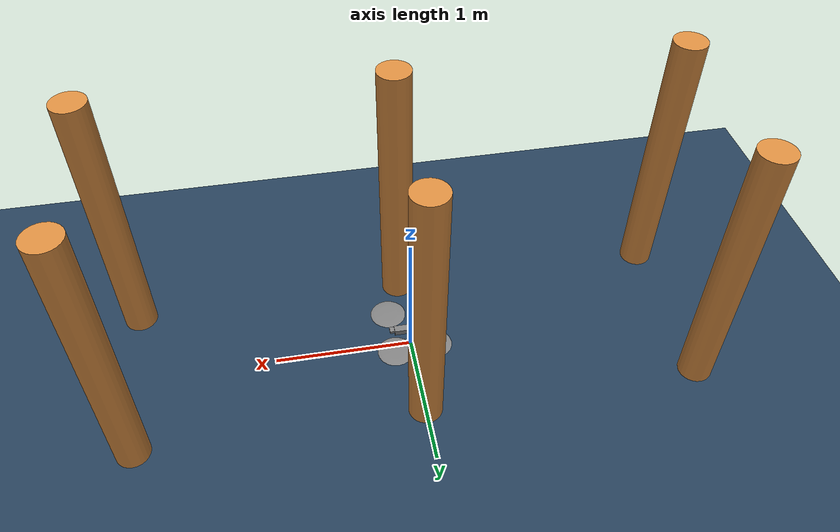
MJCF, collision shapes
<mujoco model="UAV Pillars Scene">
  <include file="../quadrotor_modified.xml"/>
  <compiler meshdir="../assets" texturedir="../assets"/>

  <visual>
    <headlight diffuse="0.6 0.6 0.6" ambient="0.3 0.3 0.3" specular="0 0 0"/>
    <rgba haze="0.15 0.25 0.35 1"/>
    <global azimuth="120" elevation="-20"/>
  </visual>

  <asset>
    <texture type="skybox" builtin="gradient" rgb1="0.3 0.5 0.7" rgb2="0 0 0" width="32" height="32"/>
    <texture type="2d" name="groundplane" builtin="checker" mark="edge"
             rgb1="0.2 0.3 0.4" rgb2="0.1 0.2 0.3" markrgb="0.8 0.8 0.8"
             width="300" height="300"/>
    <material name="groundplane" texture="groundplane" texuniform="true" texrepeat="5 5"/>
    <material name="pillar" rgba="0.85 0.55 0.25 1"/>
  </asset>

  <worldbody>
    <light name="overhead" pos="0 0 5" dir="0 0 -1" diffuse="0.8 0.8 0.8"/>
    <geom name="floor" type="plane" size="10 10 0.05" material="groundplane"/>

    <!-- 6 vertical cylinder pillars in two staggered columns.
         Column A at y = -0.6, Column B at y = +0.6, x ∈ {-2, 0, +2}.
         Drone weaves between them. Radius 0.12 m, height 2 m. -->
    <geom name="pillar_A1" type="cylinder" pos="-2.0 -0.6 1.0" size="0.12 1.0" material="pillar"/>
    <geom name="pillar_A2" type="cylinder" pos=" 0.0 -0.6 1.0" size="0.12 1.0" material="pillar"/>
    <geom name="pillar_A3" type="cylinder" pos=" 2.0 -0.6 1.0" size="0.12 1.0" material="pillar"/>
    <geom name="pillar_B1" type="cylinder" pos="-2.0  0.6 1.0" size="0.12 1.0" material="pillar"/>
    <geom name="pillar_B2" type="cylinder" pos=" 0.0  0.6 1.0" size="0.12 1.0" material="pillar"/>
    <geom name="pillar_B3" type="cylinder" pos=" 2.0  0.6 1.0" size="0.12 1.0" material="pillar"/>
  </worldbody>
</mujoco>

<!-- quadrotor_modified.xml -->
<mujoco model="Skydio X2">
  <compiler autolimits="true" assetdir="assets"/>

  <option timestep="0.01" density="1.225" viscosity="1.8e-5"/>

  <default>
    <default class="x2">
      <geom mass="0"/>
      <motor ctrlrange="0 13"/>
      <mesh scale="0.01 0.01 0.01"/>
      <default class="visual">
        <geom group="2" type="mesh" contype="0" conaffinity="0"/>
      </default>
      <default class="collision">
        <geom group="3" type="box"/>
        <default class="rotor">
          <geom type="ellipsoid" size=".13 .13 .01"/>
        </default>
      </default>
      <site group="5"/>
    </default>
  </default>

  <asset>
    <texture type="2d" file="X2_lowpoly_texture_SpinningProps_1024.png"/>
    <material name="phong3SG" texture="X2_lowpoly_texture_SpinningProps_1024"/>
    <material name="invisible" rgba="0 0 0 0"/>
    <mesh class="x2" file="X2_lowpoly.obj"/>
  </asset>

  <worldbody>
    <light name="spotlight" mode="targetbodycom" target="x2" pos="0 -1 2"/>
    <body name="x2" pos="0 0 0.1" quat="0 0 0 1" childclass="x2">
      <freejoint/>
      <camera name="track" pos="-1 0 .5" xyaxes="0 -1 0 1 0 2"/>
      <camera name="fpv"   pos="0.1 0 0.06" xyaxes="0 -1 0 0 0 1" mode="fixed"/>
      <site name="imu" pos="0 0 .02"/>
      <geom material="phong3SG" mesh="X2_lowpoly" class="visual" quat="0 0 1 1"/>
      <geom class="collision" size=".06 .027 .02" pos=".04 0 .02"/>
      <geom class="collision" size=".06 .027 .02" pos=".04 0 .06"/>
      <geom class="collision" size=".05 .027 .02" pos="-.07 0 .065"/>
      <geom class="collision" size=".023 .017 .01" pos="-.137 .008 .065" quat="1 0 0 1"/>
      <geom name="rotor1" class="rotor" pos="-.14 -.18 .05" mass=".25"/>
      <geom name="rotor2" class="rotor" pos="-.14 .18 .05" mass=".25"/>
      <geom name="rotor3" class="rotor" pos=".14 .18 .08" mass=".25"/>
      <geom name="rotor4" class="rotor" pos=".14 -.18 .08" mass=".25"/>
      <geom size=".16 .04 .02" pos="0 0 0.02" type="ellipsoid" mass=".325" class="visual" material="invisible"/>
      <site name="thrust1" pos="-.14 -.18 .05"/>
      <site name="thrust2" pos="-.14 .18 .05"/>
      <site name="thrust3" pos=".14 .18 .08"/>
      <site name="thrust4" pos=".14 -.18 .08"/>
    </body>
  </worldbody>

  <actuator>
    <motor class="x2" name="thrust1" site="thrust1" gear="0 0 1 0 0 -.0201"/>
    <motor class="x2" name="thrust2" site="thrust2" gear="0 0 1 0 0 .0201"/>
    <motor class="x2" name="thrust3" site="thrust3" gear="0 0 1 0 0 -.0201"/>
    <motor class="x2" name="thrust4" site="thrust4" gear="0 0 1 0 0 .0201"/>
  </actuator>
</mujoco>
